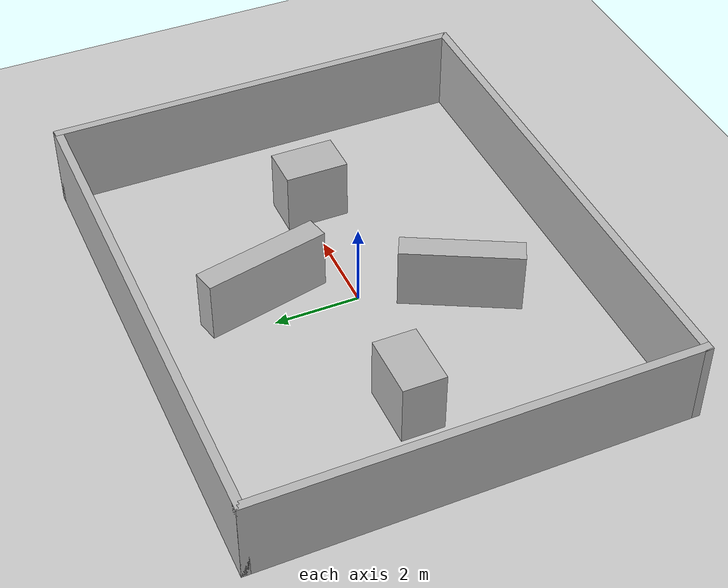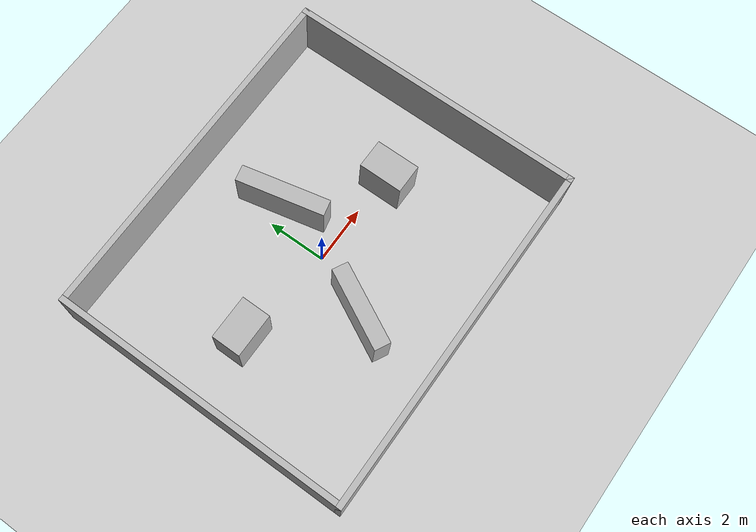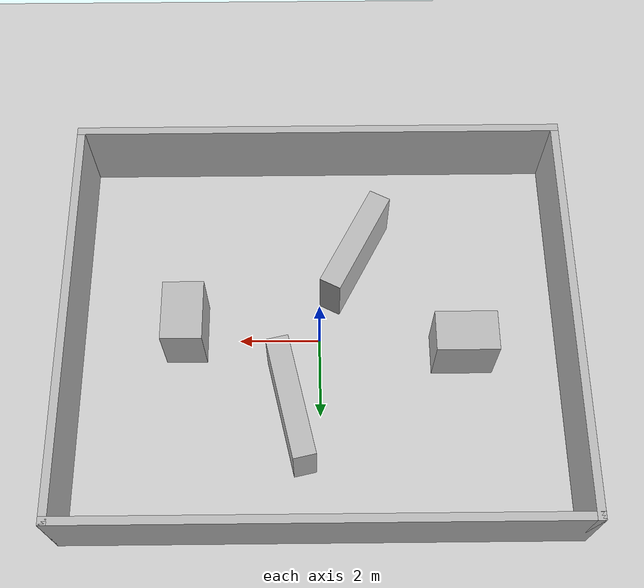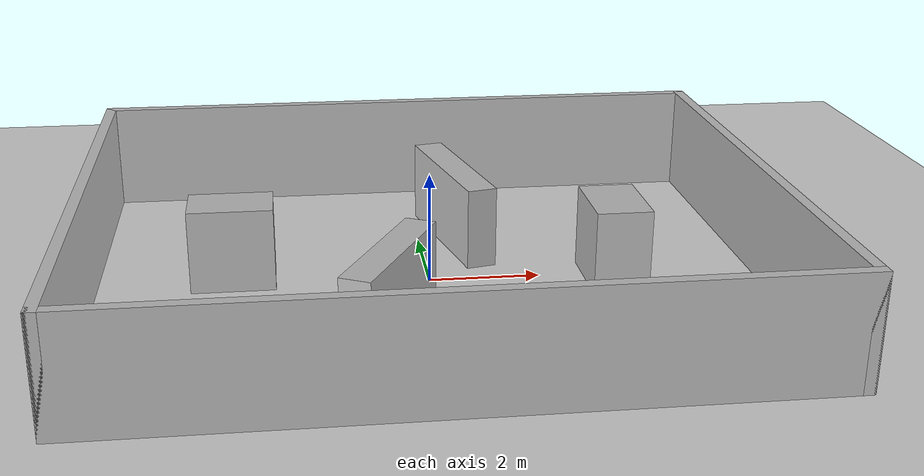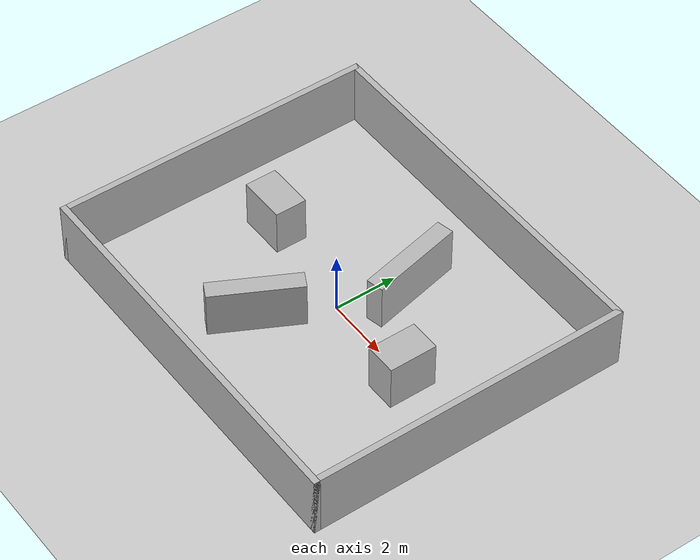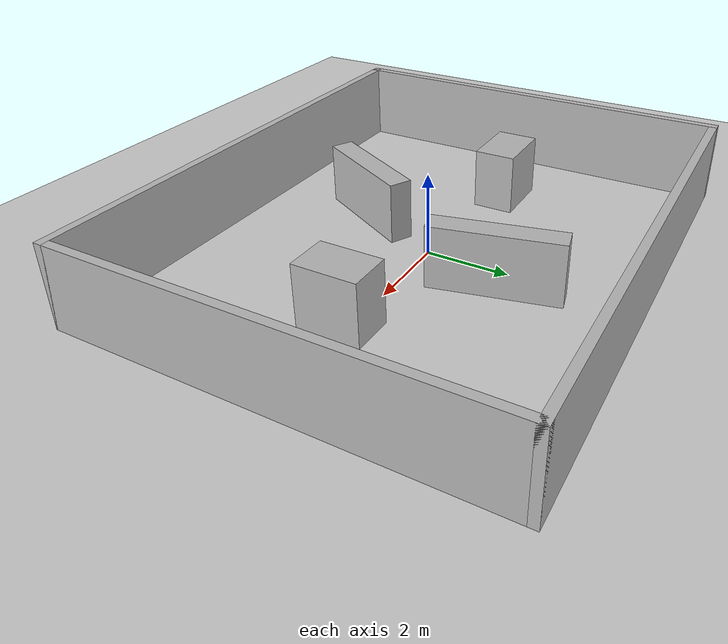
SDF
<sdf version='1.7'>
  <world name='p3a5_holdout'>
    <plugin name='gazebo_ros_state' filename='libgazebo_ros_state.so'>
      <ros><namespace>/gazebo</namespace></ros>
      <update_rate>10.0</update_rate>
    </plugin>
    <include><uri>model://sun</uri></include>
    <include><uri>model://ground_plane</uri></include>
    <gravity>0 0 -9.8</gravity>
    <physics type='ode'>
      <max_step_size>0.001</max_step_size>
      <real_time_factor>1</real_time_factor>
      <real_time_update_rate>1000</real_time_update_rate>
    </physics>
    <model name='holdout_walls'>
      <static>true</static>
      <link name='walls'>
        <collision name='north'><pose>0 5 1 0 0 0</pose><geometry><box><size>12.2 0.2 2</size></box></geometry></collision>
        <visual name='north_visual'><pose>0 5 1 0 0 0</pose><geometry><box><size>12.2 0.2 2</size></box></geometry></visual>
        <collision name='south'><pose>0 -5 1 0 0 0</pose><geometry><box><size>12.2 0.2 2</size></box></geometry></collision>
        <visual name='south_visual'><pose>0 -5 1 0 0 0</pose><geometry><box><size>12.2 0.2 2</size></box></geometry></visual>
        <collision name='east'><pose>6 0 1 0 0 0</pose><geometry><box><size>0.2 10.2 2</size></box></geometry></collision>
        <visual name='east_visual'><pose>6 0 1 0 0 0</pose><geometry><box><size>0.2 10.2 2</size></box></geometry></visual>
        <collision name='west'><pose>-6 0 1 0 0 0</pose><geometry><box><size>0.2 10.2 2</size></box></geometry></collision>
        <visual name='west_visual'><pose>-6 0 1 0 0 0</pose><geometry><box><size>0.2 10.2 2</size></box></geometry></visual>
      </link>
    </model>
    <model name='holdout_obstacles'>
      <static>true</static>
      <link name='obstacles'>
        <collision name='bar_north'><pose>0.7 2.0 0.75 0 0 0.22</pose><geometry><box><size>0.55 3.0 1.5</size></box></geometry></collision>
        <visual name='bar_north_visual'><pose>0.7 2.0 0.75 0 0 0.22</pose><geometry><box><size>0.55 3.0 1.5</size></box></geometry></visual>
        <collision name='bar_south'><pose>-0.9 -2.1 0.75 0 0 -0.48</pose><geometry><box><size>0.55 2.8 1.5</size></box></geometry></collision>
        <visual name='bar_south_visual'><pose>-0.9 -2.1 0.75 0 0 -0.48</pose><geometry><box><size>0.55 2.8 1.5</size></box></geometry></visual>
        <collision name='box_west'><pose>-3.5 0.4 0.75 0 0 0</pose><geometry><box><size>1.5 1.0 1.5</size></box></geometry></collision>
        <visual name='box_west_visual'><pose>-3.5 0.4 0.75 0 0 0</pose><geometry><box><size>1.5 1.0 1.5</size></box></geometry></visual>
        <collision name='box_east'><pose>3.3 -0.2 0.75 0 0 0</pose><geometry><box><size>1.0 1.5 1.5</size></box></geometry></collision>
        <visual name='box_east_visual'><pose>3.3 -0.2 0.75 0 0 0</pose><geometry><box><size>1.0 1.5 1.5</size></box></geometry></visual>
      </link>
    </model>
  </world>
</sdf>
